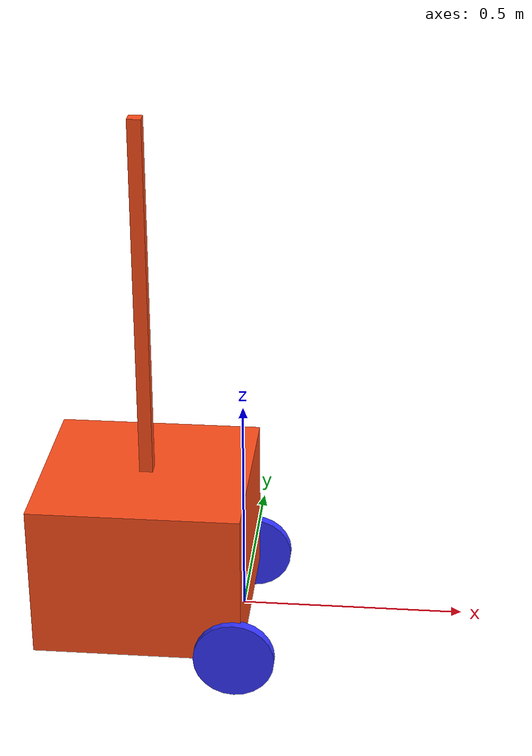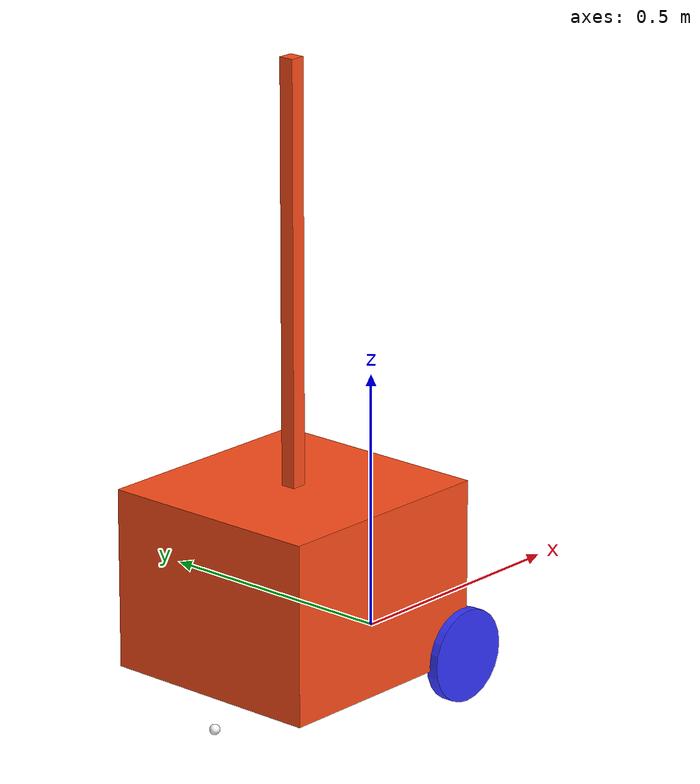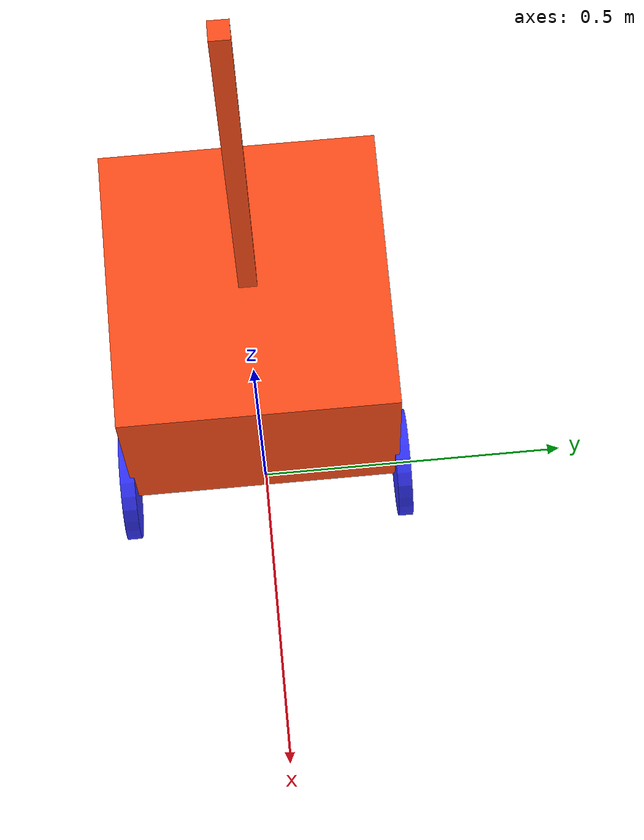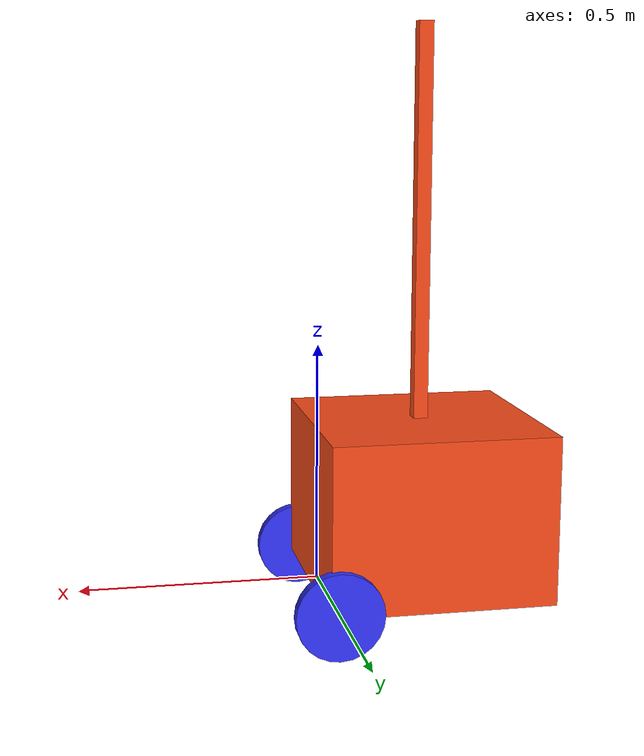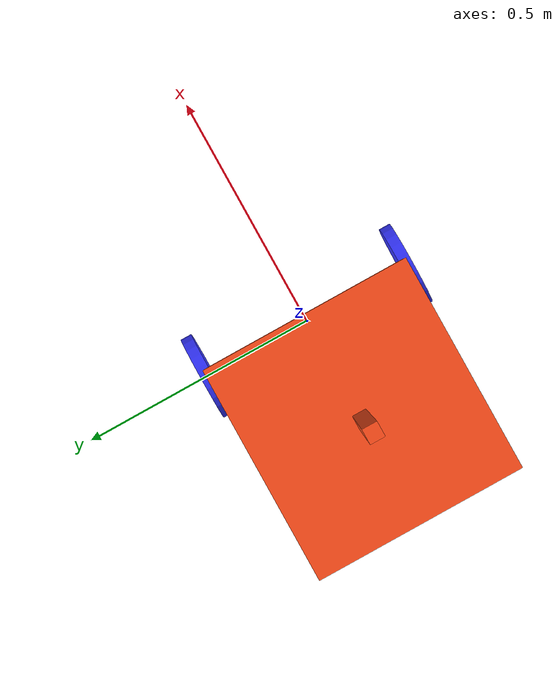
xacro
<?xml version="1.0"?>
<robot xmlns:xacro="http://www.ros.org/wiki/xacro" >

    <xacro:include filename="inertial_macros.xacro"/>

    <xacro:property name="chassis_length" value="0.465"/>
    <xacro:property name="chassis_width" value="0.450"/>
    <xacro:property name="chassis_height" value="0.350"/>
    <xacro:property name="chassis_mass" value="15.0"/>
    <xacro:property name="wheel_radius" value="0.090"/>
    <xacro:property name="wheel_thickness" value="0.024"/>
    <xacro:property name="wheel_mass" value="0.5"/>
    <xacro:property name="wheel_offset_x" value="0.45"/>
    <xacro:property name="wheel_offset_y" value="0.23"/>
    <xacro:property name="wheel_offset_z" value="0.01"/>
    <xacro:property name="caster_wheel_radius" value="0.01"/>
    <xacro:property name="caster_wheel_mass" value="0.01"/>
    <xacro:property name="caster_wheel_offset_x" value="0.015"/>
    <xacro:property name="caster_wheel_offset_z" value="-0.07"/>

    <material name="white">
        <color rgba="1 1 1 1" />
    </material>

    <material name="orange">
        <color rgba="1 0.3 0.1 1"/>
    </material>

    <material name="blue">
        <color rgba="0.2 0.2 1 1"/>
    </material>

    <material name="black">
        <color rgba="0 0 0 1"/>
    </material>

    <material name="red">
        <color rgba="1 0 0 1"/>
    </material>

    <!-- BASE LINK -->

    <link name="base_link">

    </link>

    <!-- BASE_FOOTPRINT LINK -->

    <joint name="base_footprint_joint" type="fixed">
        <parent link="base_link"/>
        <child link="base_footprint"/>
        <origin xyz="0 0 0" rpy="0 0 0"/>
    </joint>

    <link name="base_footprint">
    </link>

    <!-- Pole -->

    <joint name="pole_joint" type="fixed">
        <parent link="base_link"/>
        <child link="pole"/>
        <origin xyz="-0.45 0 0.56" rpy="0 0 0"/>
    </joint>

    <link name="pole">
        <visual>
            <origin xyz="${chassis_length/2} 0 ${chassis_height/2}"/>
            <geometry>
                <box size="0.03 0.03 0.84"/>
            </geometry>
            <material name="orange"/>
        </visual>
        <collision>
            <origin xyz="${chassis_length/2} 0 ${chassis_height/2}"/>
            <geometry>
                <box size="0.03 0.03 0.84"/>
            </geometry>
        </collision>
        <xacro:inertial_box mass="0.5" x="0.03" y="0.03" z="00.84">
            <origin xyz="${chassis_length/2} 0 ${chassis_height/2}" rpy="0 0 0"/>
        </xacro:inertial_box>
    </link>

    <!-- CHASSIS LINK -->

    <joint name="chassis_joint" type="fixed">
        <parent link="base_link"/>
        <child link="chassis"/>
        <origin xyz="${-wheel_offset_x} 0 ${-wheel_offset_z}"/>
    </joint>

    <link name="chassis">
        <visual>
            <origin xyz="${chassis_length/2} 0 ${chassis_height/2}"/>
            <geometry>
                <box size="${chassis_length} ${chassis_width} ${chassis_height}"/>
            </geometry>
            <material name="orange"/>
        </visual>
        <collision>
            <origin xyz="${chassis_length/2} 0 ${chassis_height/2}"/>
            <geometry>
                <box size="${chassis_length} ${chassis_width} ${chassis_height}"/>
            </geometry>
        </collision>
        <xacro:inertial_box mass="0.5" x="${chassis_length}" y="${chassis_width}" z="${chassis_height}">
            <origin xyz="${chassis_length/2} 0 ${chassis_height/2}" rpy="0 0 0"/>
        </xacro:inertial_box>
    </link>

    <gazebo reference="chassis">
        <material>Gazebo/Orange</material>
    </gazebo>

    <!-- LEFT WHEEL LINK -->

    <joint name="left_wheel_joint" type="continuous">
        <parent link="base_link"/>
        <child link="left_wheel"/>
        <origin xyz="0 ${wheel_offset_y} 0" rpy="-${pi/2} 0 0" />
        <axis xyz="0 0 1"/>
    </joint>

    <link name="left_wheel">
        <visual>
            <geometry>
                <cylinder radius="${wheel_radius}" length="${wheel_thickness}"/>
            </geometry>
            <material name="blue"/>
        </visual>
        <collision>
            <geometry>
                <sphere radius="${wheel_radius}"/>
            </geometry>
        </collision>
        <xacro:inertial_cylinder mass="${wheel_mass}" length="${wheel_thickness}" radius="${wheel_radius}">
            <origin xyz="0 0 0" rpy="0 0 0"/>
        </xacro:inertial_cylinder>
    </link>

    <gazebo reference="left_wheel">
        <material>Gazebo/Blue</material>
    </gazebo>

    <!-- RIGHT WHEEL LINK -->

    <joint name="right_wheel_joint" type="continuous">
        <parent link="base_link"/>
        <child link="right_wheel"/>
        <origin xyz="0 ${-wheel_offset_y} 0" rpy="${pi/2} 0 0" />
        <axis xyz="0 0 -1"/>
    </joint>

    <link name="right_wheel">
        <visual>
            <geometry>
                <cylinder radius="${wheel_radius}" length="${wheel_thickness}"/>
            </geometry>
            <material name="blue"/>
        </visual>
        <collision>
            <geometry>
                <sphere radius="${wheel_radius}"/>
            </geometry>
        </collision>
        <xacro:inertial_cylinder mass="${wheel_mass}" length="${wheel_thickness}" radius="${wheel_radius}">
            <origin xyz="0 0 0" rpy="0 0 0"/>
        </xacro:inertial_cylinder>
    </link>

    <gazebo reference="right_wheel">
        <material>Gazebo/Blue</material>
    </gazebo>

    <!-- CASTER WHEEL LINK -->

    <joint name="caster_wheel_joint" type="fixed">
        <parent link="chassis"/>
        <child link="caster_wheel"/>
        <origin xyz="${caster_wheel_offset_x} 0 ${caster_wheel_offset_z}"/>
    </joint>

    <link name="caster_wheel">
        <visual>
            <geometry>
                <sphere radius="${caster_wheel_radius}"/>
            </geometry>
            <material name="white"/>
        </visual>
        <collision>
            <geometry>
                <sphere radius="${caster_wheel_radius}"/>
            </geometry>
        </collision>
        <xacro:inertial_sphere mass="${caster_wheel_mass}" radius="${caster_wheel_radius}">
            <origin xyz="0 0 0" rpy="0 0 0"/>
        </xacro:inertial_sphere>
    </link>

    <gazebo reference="caster_wheel">
        <material>Gazebo/White</material>
        <mu1 value="0.001"/>
        <mu2 value="0.001"/>
    </gazebo>

</robot>
